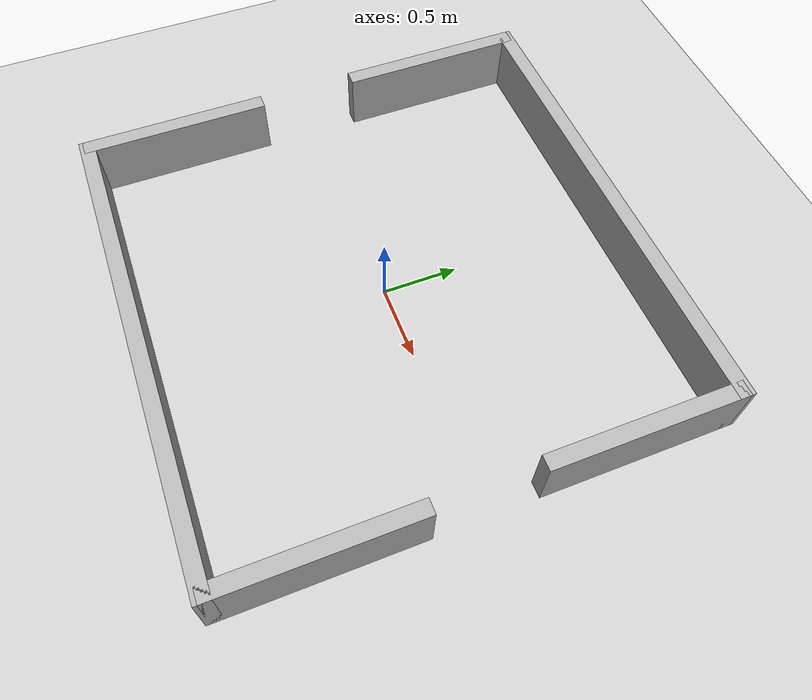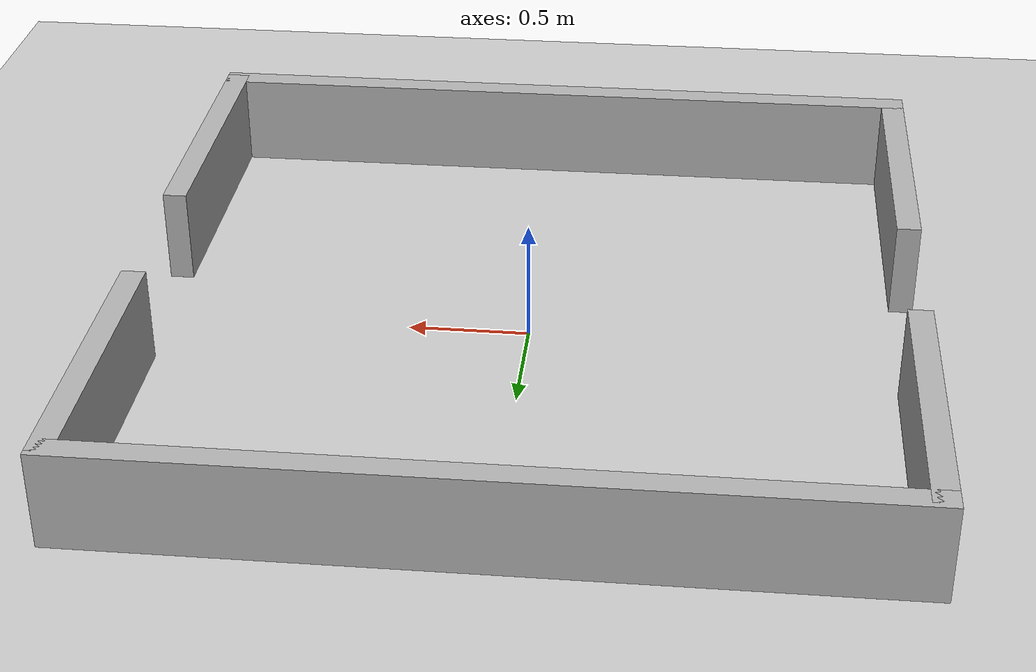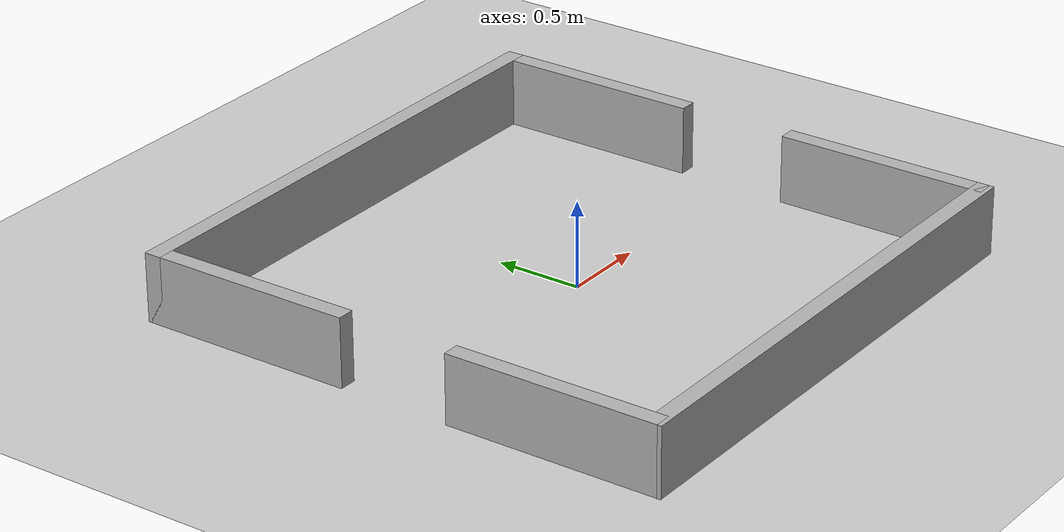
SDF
<?xml version="1.0" ?>
<sdf version="1.6">
  <world name="arena">
    <include>
      <uri>model://sun</uri>
    </include>

    <!-- Sol -->
    <include>
      <uri>model://ground_plane</uri>
    </include>

        <!-- Plugin pour publier les états des modèles -->
    <plugin filename="libgazebo_ros_state.so" name="gazebo_ros_state">
      <ros>
        <namespace>/gazebo</namespace>
        <remapping>~/model_states:=/model_states</remapping>
      </ros>
      <update_rate>30.0</update_rate>
      <publish_link_pose>true</publish_link_pose>
      <publish_model_pose>true</publish_model_pose>
      <publish_tf>true</publish_tf>
    </plugin>

    <!-- Plugin pour activer les services de spawn et suppression -->
    <plugin filename="libgazebo_ros_factory.so" name="gazebo_ros_factory">
      <ros>
        <namespace>/gazebo</namespace>
      </ros>
    </plugin>

    <!-- Arène : 4 murs de 3m de long et 0.4m de haut -->
    <model name="arena_walls">
      <static>true</static>

      <!-- Mur Nord (Y=1.5) -->
      <link name="north_wall">
        <pose>0 1.55 0.2 0 0 0</pose>
        <collision name="collision">
          <geometry>
            <box>
              <size>3.2 0.1 0.4</size>
            </box>
          </geometry>
        </collision>
        <visual name="visual">
          <geometry>
            <box>
              <size>3.2 0.1 0.4</size>
            </box>
          </geometry>
          <material>
            <ambient>0.7 0.7 0.7 1</ambient>
            <diffuse>0.7 0.7 0.7 1</diffuse>
            <specular>0.1 0.1 0.1 1</specular>
          </material>
        </visual>
      </link>

      <!-- Mur Sud (Y=-1.5) -->
      <link name="south_wall">
        <pose>0 -1.55 0.2 0 0 0</pose>
        <collision name="collision">
          <geometry>
            <box>
              <size>3.2 0.1 0.4</size>
            </box>
          </geometry>
        </collision>
        <visual name="visual">
          <geometry>
            <box>
              <size>3.2 0.1 0.4</size>
            </box>
          </geometry>
          <material>
            <ambient>0.7 0.7 0.7 1</ambient>
            <diffuse>0.7 0.7 0.7 1</diffuse>
            <specular>0.1 0.1 0.1 1</specular>
          </material>
        </visual>
      </link>

      <!-- Mur Est (X=1.5) avec ouverture -->
      <link name="east_wall_left">
        <pose>1.55 0.95 0.2 0 0 0</pose>
        <collision name="collision">
          <geometry>
            <box>
              <size>0.1 1.25 0.4</size>
            </box>
          </geometry>
        </collision>
        <visual name="visual">
          <geometry>
            <box>
              <size>0.1 1.25 0.4</size>
            </box>
          </geometry>
          <material>
            <ambient>0.7 0.7 0.7 1</ambient>
            <diffuse>0.7 0.7 0.7 1</diffuse>
            <specular>0.1 0.1 0.1 1</specular>
          </material>
        </visual>
      </link>
      <link name="east_wall_right">
        <pose>1.55 -0.95 0.2 0 0 0</pose>
        <collision name="collision">
          <geometry>
            <box>
              <size>0.1 1.25 0.4</size>
            </box>
          </geometry>
        </collision>
        <visual name="visual">
          <geometry>
            <box>
              <size>0.1 1.25 0.4</size>
            </box>
          </geometry>
          <material>
            <ambient>0.7 0.7 0.7 1</ambient>
            <diffuse>0.7 0.7 0.7 1</diffuse>
            <specular>0.1 0.1 0.1 1</specular>
          </material>
        </visual>
      </link>

      <!-- Mur Ouest (X=-1.5) avec ouverture -->
      <link name="west_wall_left">
        <pose>-1.55 0.95 0.2 0 0 0</pose>
        <collision name="collision">
          <geometry>
            <box>
              <size>0.1 1.25 0.4</size>
            </box>
          </geometry>
        </collision>
        <visual name="visual">
          <geometry>
            <box>
              <size>0.1 1.25 0.4</size>
            </box>
          </geometry>
          <material>
            <ambient>0.7 0.7 0.7 1</ambient>
            <diffuse>0.7 0.7 0.7 1</diffuse>
            <specular>0.1 0.1 0.1 1</specular>
          </material>
        </visual>
      </link>
      <link name="west_wall_right">
        <pose>-1.55 -0.95 0.2 0 0 0</pose>
        <collision name="collision">
          <geometry>
            <box>
              <size>0.1 1.25 0.4</size>
            </box>
          </geometry>
        </collision>
        <visual name="visual">
          <geometry>
            <box>
              <size>0.1 1.25 0.4</size>
            </box>
          </geometry>
          <material>
            <ambient>0.7 0.7 0.7 1</ambient>
            <diffuse>0.7 0.7 0.7 1</diffuse>
            <specular>0.1 0.1 0.1 1</specular>
          </material>
        </visual>
      </link>
    </model>
  </world>
</sdf>
